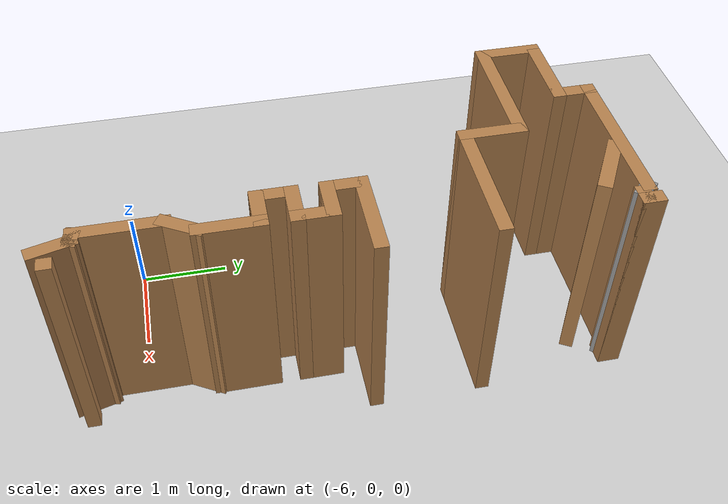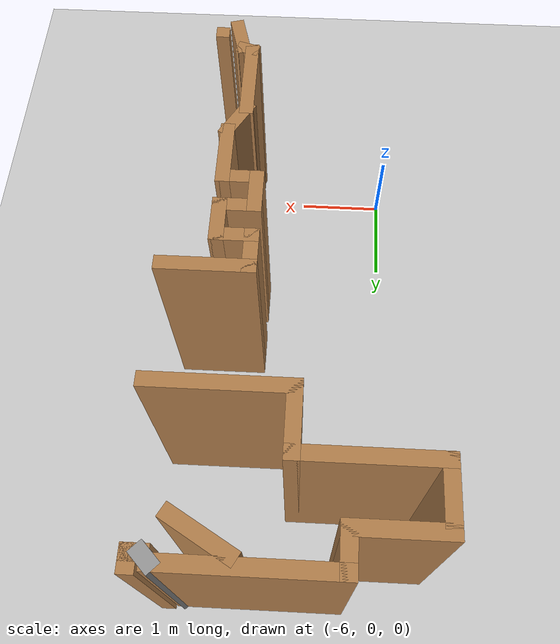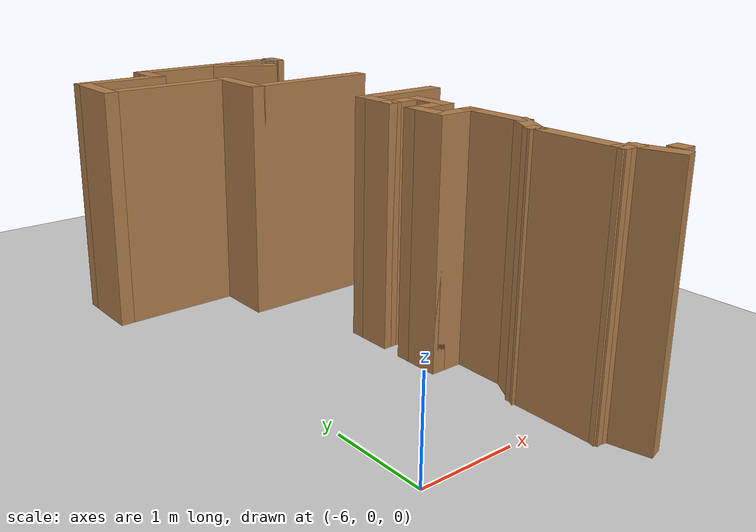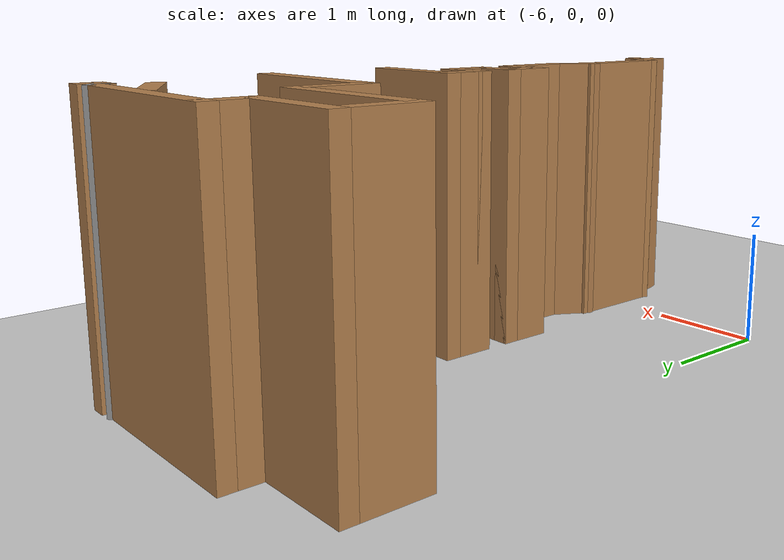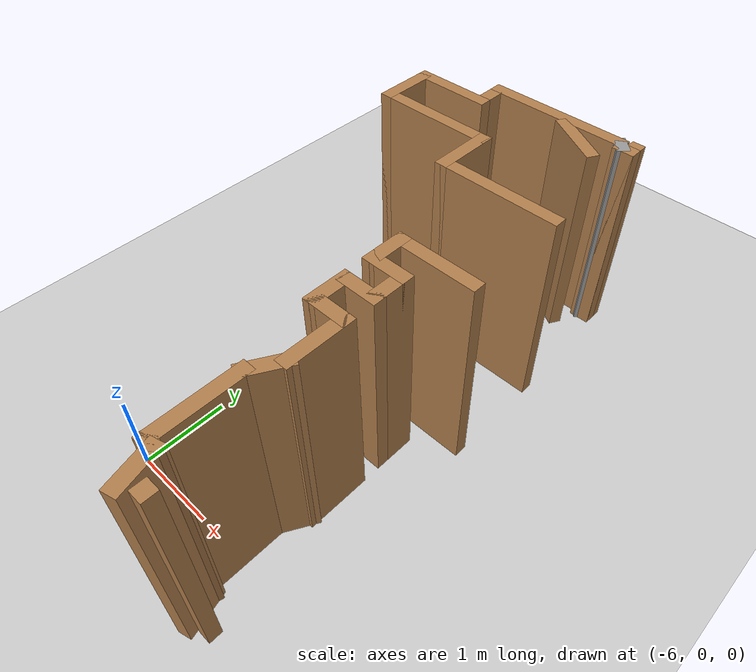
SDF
<sdf version="1.6">
 <world name="default">
  <model name="ground_plane">
   <static>1</static>
   <link name="link">
    <collision name="collision">
     <geometry><plane><normal>0 0 1</normal><size>100 100</size></plane></geometry>
     <surface><friction><ode><mu>100</mu><mu2>50</mu2></ode></friction></surface>
    </collision>
    <visual name="visual">
     <cast_shadows>0</cast_shadows>
     <geometry><plane><normal>0 0 1</normal><size>100 100</size></plane></geometry>
     <material>
      <script><uri>file://media/materials/scripts/gazebo.material</uri><name>Gazebo/Grey</name></script>
     </material>
    </visual>
   </link>
  </model>
  <model name="map_30">
   <link name="Wall_10">
    <pose>-6.15506 4.97315 0 0 0 -1.5708</pose>
    <visual name="Wall_10_Visual">
     <pose>0 0 1.25 0 -0 0</pose>
     <geometry><box><size>0.75 0.15 2.5</size></box></geometry>
     <material>
      <script><uri>file://media/materials/scripts/gazebo.material</uri><name>Gazebo/Wood</name></script>
      <ambient>1 1 1 1</ambient>
      <shader type="pixel"/>
     </material>
     <meta><layer>0</layer></meta>
    </visual>
    <collision name="Wall_10_Collision">
     <pose>0 0 1.25 0 -0 0</pose>
     <geometry><box><size>0.75 0.15 2.5</size></box></geometry>
     <surface>
      <friction>
       <ode><mu>1</mu><mu2>1</mu2><fdir1>0 0 0</fdir1><slip1>0</slip1><slip2>0</slip2></ode>
       <torsional>
        <coefficient>1</coefficient>
        <patch_radius>0</patch_radius>
        <surface_radius>0</surface_radius>
        <use_patch_radius>1</use_patch_radius>
        <ode><slip>0</slip></ode>
       </torsional>
      </friction>
      <bounce><restitution_coefficient>0</restitution_coefficient><threshold>1e+06</threshold></bounce>
      <contact>
       <collide_without_contact>0</collide_without_contact>
       <collide_without_contact_bitmask>1</collide_without_contact_bitmask>
       <collide_bitmask>1</collide_bitmask>
       <ode>
        <soft_cfm>0</soft_cfm>
        <soft_erp>0.2</soft_erp>
        <kp>1e+13</kp>
        <kd>1</kd>
        <max_vel>0.01</max_vel>
        <min_depth>0</min_depth>
       </ode>
       <bullet>
        <split_impulse>1</split_impulse>
        <split_impulse_penetration_threshold>-0.01</split_impulse_penetration_threshold>
        <soft_cfm>0</soft_cfm>
        <soft_erp>0.2</soft_erp>
        <kp>1e+13</kp>
        <kd>1</kd>
       </bullet>
      </contact>
     </surface>
    </collision>
   </link>
   <link name="Wall_13">
    <pose>-5.48006 4.67315 0 0 -0 0</pose>
    <visual name="Wall_13_Visual">
     <pose>0 0 1.25 0 -0 0</pose>
     <geometry><box><size>1.5 0.15 2.5</size></box></geometry>
     <material>
      <script><uri>file://media/materials/scripts/gazebo.material</uri><name>Gazebo/Wood</name></script>
      <ambient>1 1 1 1</ambient>
      <shader type="pixel"/>
     </material>
     <meta><layer>0</layer></meta>
    </visual>
    <collision name="Wall_13_Collision">
     <pose>0 0 1.25 0 -0 0</pose>
     <geometry><box><size>1.5 0.15 2.5</size></box></geometry>
     <surface>
      <friction>
       <ode><mu>1</mu><mu2>1</mu2><fdir1>0 0 0</fdir1><slip1>0</slip1><slip2>0</slip2></ode>
       <torsional>
        <coefficient>1</coefficient>
        <patch_radius>0</patch_radius>
        <surface_radius>0</surface_radius>
        <use_patch_radius>1</use_patch_radius>
        <ode><slip>0</slip></ode>
       </torsional>
      </friction>
      <bounce><restitution_coefficient>0</restitution_coefficient><threshold>1e+06</threshold></bounce>
      <contact>
       <collide_without_contact>0</collide_without_contact>
       <collide_without_contact_bitmask>1</collide_without_contact_bitmask>
       <collide_bitmask>1</collide_bitmask>
       <ode>
        <soft_cfm>0</soft_cfm>
        <soft_erp>0.2</soft_erp>
        <kp>1e+13</kp>
        <kd>1</kd>
        <max_vel>0.01</max_vel>
        <min_depth>0</min_depth>
       </ode>
       <bullet>
        <split_impulse>1</split_impulse>
        <split_impulse_penetration_threshold>-0.01</split_impulse_penetration_threshold>
        <soft_cfm>0</soft_cfm>
        <soft_erp>0.2</soft_erp>
        <kp>1e+13</kp>
        <kd>1</kd>
       </bullet>
      </contact>
     </surface>
    </collision>
   </link>
   <link name="Wall_14">
    <pose>-4.80506 4.37315 0 0 0 -1.5708</pose>
    <visual name="Wall_14_Visual">
     <pose>0 0 1.25 0 -0 0</pose>
     <geometry><box><size>0.75 0.15 2.5</size></box></geometry>
     <material>
      <script><uri>file://media/materials/scripts/gazebo.material</uri><name>Gazebo/Wood</name></script>
      <ambient>1 1 1 1</ambient>
      <shader type="pixel"/>
     </material>
     <meta><layer>0</layer></meta>
    </visual>
    <collision name="Wall_14_Collision">
     <pose>0 0 1.25 0 -0 0</pose>
     <geometry><box><size>0.75 0.15 2.5</size></box></geometry>
     <surface>
      <friction>
       <ode><mu>1</mu><mu2>1</mu2><fdir1>0 0 0</fdir1><slip1>0</slip1><slip2>0</slip2></ode>
       <torsional>
        <coefficient>1</coefficient>
        <patch_radius>0</patch_radius>
        <surface_radius>0</surface_radius>
        <use_patch_radius>1</use_patch_radius>
        <ode><slip>0</slip></ode>
       </torsional>
      </friction>
      <bounce><restitution_coefficient>0</restitution_coefficient><threshold>1e+06</threshold></bounce>
      <contact>
       <collide_without_contact>0</collide_without_contact>
       <collide_without_contact_bitmask>1</collide_without_contact_bitmask>
       <collide_bitmask>1</collide_bitmask>
       <ode>
        <soft_cfm>0</soft_cfm>
        <soft_erp>0.2</soft_erp>
        <kp>1e+13</kp>
        <kd>1</kd>
        <max_vel>0.01</max_vel>
        <min_depth>0</min_depth>
       </ode>
       <bullet>
        <split_impulse>1</split_impulse>
        <split_impulse_penetration_threshold>-0.01</split_impulse_penetration_threshold>
        <soft_cfm>0</soft_cfm>
        <soft_erp>0.2</soft_erp>
        <kp>1e+13</kp>
        <kd>1</kd>
       </bullet>
      </contact>
     </surface>
    </collision>
   </link>
   <link name="Wall_15">
    <pose>-4.13006 4.07315 0 0 -0 0</pose>
    <visual name="Wall_15_Visual">
     <pose>0 0 1.25 0 -0 0</pose>
     <geometry><box><size>1.5 0.15 2.5</size></box></geometry>
     <material>
      <script><uri>file://media/materials/scripts/gazebo.material</uri><name>Gazebo/Wood</name></script>
      <ambient>1 1 1 1</ambient>
      <shader type="pixel"/>
     </material>
     <meta><layer>0</layer></meta>
    </visual>
    <collision name="Wall_15_Collision">
     <pose>0 0 1.25 0 -0 0</pose>
     <geometry><box><size>1.5 0.15 2.5</size></box></geometry>
     <surface>
      <friction>
       <ode><mu>1</mu><mu2>1</mu2><fdir1>0 0 0</fdir1><slip1>0</slip1><slip2>0</slip2></ode>
       <torsional>
        <coefficient>1</coefficient>
        <patch_radius>0</patch_radius>
        <surface_radius>0</surface_radius>
        <use_patch_radius>1</use_patch_radius>
        <ode><slip>0</slip></ode>
       </torsional>
      </friction>
      <bounce><restitution_coefficient>0</restitution_coefficient><threshold>1e+06</threshold></bounce>
      <contact>
       <collide_without_contact>0</collide_without_contact>
       <collide_without_contact_bitmask>1</collide_without_contact_bitmask>
       <collide_bitmask>1</collide_bitmask>
       <ode>
        <soft_cfm>0</soft_cfm>
        <soft_erp>0.2</soft_erp>
        <kp>1e+13</kp>
        <kd>1</kd>
        <max_vel>0.01</max_vel>
        <min_depth>0</min_depth>
       </ode>
       <bullet>
        <split_impulse>1</split_impulse>
        <split_impulse_penetration_threshold>-0.01</split_impulse_penetration_threshold>
        <soft_cfm>0</soft_cfm>
        <soft_erp>0.2</soft_erp>
        <kp>1e+13</kp>
        <kd>1</kd>
       </bullet>
      </contact>
     </surface>
    </collision>
   </link>
   <link name="Wall_182">
    <pose>-4.08456 5.38678 0 0 0 -0.523599</pose>
    <visual name="Wall_182_Visual">
     <pose>0 0 1.25 0 -0 0</pose>
     <geometry><box><size>0.75 0.15 2.5</size></box></geometry>
     <material>
      <script><uri>file://media/materials/scripts/gazebo.material</uri><name>Gazebo/Wood</name></script>
      <ambient>1 1 1 1</ambient>
      <shader type="pixel"/>
     </material>
     <meta><layer>0</layer></meta>
    </visual>
    <collision name="Wall_182_Collision">
     <pose>0 0 1.25 0 -0 0</pose>
     <geometry><box><size>0.75 0.15 2.5</size></box></geometry>
     <surface>
      <friction>
       <ode><mu>1</mu><mu2>1</mu2><fdir1>0 0 0</fdir1><slip1>0</slip1><slip2>0</slip2></ode>
       <torsional>
        <coefficient>1</coefficient>
        <patch_radius>0</patch_radius>
        <surface_radius>0</surface_radius>
        <use_patch_radius>1</use_patch_radius>
        <ode><slip>0</slip></ode>
       </torsional>
      </friction>
      <bounce><restitution_coefficient>0</restitution_coefficient><threshold>1e+06</threshold></bounce>
      <contact>
       <collide_without_contact>0</collide_without_contact>
       <collide_without_contact_bitmask>1</collide_without_contact_bitmask>
       <collide_bitmask>1</collide_bitmask>
       <ode>
        <soft_cfm>0</soft_cfm>
        <soft_erp>0.2</soft_erp>
        <kp>1e+13</kp>
        <kd>1</kd>
        <max_vel>0.01</max_vel>
        <min_depth>0</min_depth>
       </ode>
       <bullet>
        <split_impulse>1</split_impulse>
        <split_impulse_penetration_threshold>-0.01</split_impulse_penetration_threshold>
        <soft_cfm>0</soft_cfm>
        <soft_erp>0.2</soft_erp>
        <kp>1e+13</kp>
        <kd>1</kd>
       </bullet>
      </contact>
     </surface>
    </collision>
   </link>
   <link name="Wall_22">
    <pose>-3.88006 2.87315 0 0 -0 3.14159</pose>
    <visual name="Wall_22_Visual">
     <pose>0 0 1.25 0 -0 0</pose>
     <geometry><box><size>1 0.15 2.5</size></box></geometry>
     <material>
      <script><uri>file://media/materials/scripts/gazebo.material</uri><name>Gazebo/Wood</name></script>
      <ambient>1 1 1 1</ambient>
      <shader type="pixel"/>
     </material>
     <meta><layer>0</layer></meta>
    </visual>
    <collision name="Wall_22_Collision">
     <pose>0 0 1.25 0 -0 0</pose>
     <geometry><box><size>1 0.15 2.5</size></box></geometry>
     <surface>
      <friction>
       <ode><mu>1</mu><mu2>1</mu2><fdir1>0 0 0</fdir1><slip1>0</slip1><slip2>0</slip2></ode>
       <torsional>
        <coefficient>1</coefficient>
        <patch_radius>0</patch_radius>
        <surface_radius>0</surface_radius>
        <use_patch_radius>1</use_patch_radius>
        <ode><slip>0</slip></ode>
       </torsional>
      </friction>
      <bounce><restitution_coefficient>0</restitution_coefficient><threshold>1e+06</threshold></bounce>
      <contact>
       <collide_without_contact>0</collide_without_contact>
       <collide_without_contact_bitmask>1</collide_without_contact_bitmask>
       <collide_bitmask>1</collide_bitmask>
       <ode>
        <soft_cfm>0</soft_cfm>
        <soft_erp>0.2</soft_erp>
        <kp>1e+13</kp>
        <kd>1</kd>
        <max_vel>0.01</max_vel>
        <min_depth>0</min_depth>
       </ode>
       <bullet>
        <split_impulse>1</split_impulse>
        <split_impulse_penetration_threshold>-0.01</split_impulse_penetration_threshold>
        <soft_cfm>0</soft_cfm>
        <soft_erp>0.2</soft_erp>
        <kp>1e+13</kp>
        <kd>1</kd>
       </bullet>
      </contact>
     </surface>
    </collision>
   </link>
   <link name="Wall_23">
    <pose>-4.30506 2.69815 0 0 0 -1.5708</pose>
    <visual name="Wall_23_Visual">
     <pose>0 0 1.25 0 -0 0</pose>
     <geometry><box><size>0.5 0.15 2.5</size></box></geometry>
     <material>
      <script><uri>file://media/materials/scripts/gazebo.material</uri><name>Gazebo/Wood</name></script>
      <ambient>1 1 1 1</ambient>
      <shader type="pixel"/>
     </material>
     <meta><layer>0</layer></meta>
    </visual>
    <collision name="Wall_23_Collision">
     <pose>0 0 1.25 0 -0 0</pose>
     <geometry><box><size>0.5 0.15 2.5</size></box></geometry>
     <surface>
      <friction>
       <ode><mu>1</mu><mu2>1</mu2><fdir1>0 0 0</fdir1><slip1>0</slip1><slip2>0</slip2></ode>
       <torsional>
        <coefficient>1</coefficient>
        <patch_radius>0</patch_radius>
        <surface_radius>0</surface_radius>
        <use_patch_radius>1</use_patch_radius>
        <ode><slip>0</slip></ode>
       </torsional>
      </friction>
      <bounce><restitution_coefficient>0</restitution_coefficient><threshold>1e+06</threshold></bounce>
      <contact>
       <collide_without_contact>0</collide_without_contact>
       <collide_without_contact_bitmask>1</collide_without_contact_bitmask>
       <collide_bitmask>1</collide_bitmask>
       <ode>
        <soft_cfm>0</soft_cfm>
        <soft_erp>0.2</soft_erp>
        <kp>1e+13</kp>
        <kd>1</kd>
        <max_vel>0.01</max_vel>
        <min_depth>0</min_depth>
       </ode>
       <bullet>
        <split_impulse>1</split_impulse>
        <split_impulse_penetration_threshold>-0.01</split_impulse_penetration_threshold>
        <soft_cfm>0</soft_cfm>
        <soft_erp>0.2</soft_erp>
        <kp>1e+13</kp>
        <kd>1</kd>
       </bullet>
      </contact>
     </surface>
    </collision>
   </link>
   <link name="Wall_24">
    <pose>-4.13006 2.52315 0 0 -0 0</pose>
    <visual name="Wall_24_Visual">
     <pose>0 0 1.25 0 -0 0</pose>
     <geometry><box><size>0.5 0.15 2.5</size></box></geometry>
     <material>
      <script><uri>file://media/materials/scripts/gazebo.material</uri><name>Gazebo/Wood</name></script>
      <ambient>1 1 1 1</ambient>
      <shader type="pixel"/>
     </material>
     <meta><layer>0</layer></meta>
    </visual>
    <collision name="Wall_24_Collision">
     <pose>0 0 1.25 0 -0 0</pose>
     <geometry><box><size>0.5 0.15 2.5</size></box></geometry>
     <surface>
      <friction>
       <ode><mu>1</mu><mu2>1</mu2><fdir1>0 0 0</fdir1><slip1>0</slip1><slip2>0</slip2></ode>
       <torsional>
        <coefficient>1</coefficient>
        <patch_radius>0</patch_radius>
        <surface_radius>0</surface_radius>
        <use_patch_radius>1</use_patch_radius>
        <ode><slip>0</slip></ode>
       </torsional>
      </friction>
      <bounce><restitution_coefficient>0</restitution_coefficient><threshold>1e+06</threshold></bounce>
      <contact>
       <collide_without_contact>0</collide_without_contact>
       <collide_without_contact_bitmask>1</collide_without_contact_bitmask>
       <collide_bitmask>1</collide_bitmask>
       <ode>
        <soft_cfm>0</soft_cfm>
        <soft_erp>0.2</soft_erp>
        <kp>1e+13</kp>
        <kd>1</kd>
        <max_vel>0.01</max_vel>
        <min_depth>0</min_depth>
       </ode>
       <bullet>
        <split_impulse>1</split_impulse>
        <split_impulse_penetration_threshold>-0.01</split_impulse_penetration_threshold>
        <soft_cfm>0</soft_cfm>
        <soft_erp>0.2</soft_erp>
        <kp>1e+13</kp>
        <kd>1</kd>
       </bullet>
      </contact>
     </surface>
    </collision>
   </link>
   <link name="Wall_25">
    <pose>-3.95506 2.34815 0 0 0 -1.5708</pose>
    <visual name="Wall_25_Visual">
     <pose>0 0 1.25 0 -0 0</pose>
     <geometry><box><size>0.5 0.15 2.5</size></box></geometry>
     <material>
      <script><uri>file://media/materials/scripts/gazebo.material</uri><name>Gazebo/Wood</name></script>
      <ambient>1 1 1 1</ambient>
      <shader type="pixel"/>
     </material>
     <meta><layer>0</layer></meta>
    </visual>
    <collision name="Wall_25_Collision">
     <pose>0 0 1.25 0 -0 0</pose>
     <geometry><box><size>0.5 0.15 2.5</size></box></geometry>
     <surface>
      <friction>
       <ode><mu>1</mu><mu2>1</mu2><fdir1>0 0 0</fdir1><slip1>0</slip1><slip2>0</slip2></ode>
       <torsional>
        <coefficient>1</coefficient>
        <patch_radius>0</patch_radius>
        <surface_radius>0</surface_radius>
        <use_patch_radius>1</use_patch_radius>
        <ode><slip>0</slip></ode>
       </torsional>
      </friction>
      <bounce><restitution_coefficient>0</restitution_coefficient><threshold>1e+06</threshold></bounce>
      <contact>
       <collide_without_contact>0</collide_without_contact>
       <collide_without_contact_bitmask>1</collide_without_contact_bitmask>
       <collide_bitmask>1</collide_bitmask>
       <ode>
        <soft_cfm>0</soft_cfm>
        <soft_erp>0.2</soft_erp>
        <kp>1e+13</kp>
        <kd>1</kd>
        <max_vel>0.01</max_vel>
        <min_depth>0</min_depth>
       </ode>
       <bullet>
        <split_impulse>1</split_impulse>
        <split_impulse_penetration_threshold>-0.01</split_impulse_penetration_threshold>
        <soft_cfm>0</soft_cfm>
        <soft_erp>0.2</soft_erp>
        <kp>1e+13</kp>
        <kd>1</kd>
       </bullet>
      </contact>
     </surface>
    </collision>
   </link>
   <link name="Wall_26">
    <pose>-4.13006 2.17315 0 0 -0 3.14159</pose>
    <visual name="Wall_26_Visual">
     <pose>0 0 1.25 0 -0 0</pose>
     <geometry><box><size>0.5 0.15 2.5</size></box></geometry>
     <material>
      <script><uri>file://media/materials/scripts/gazebo.material</uri><name>Gazebo/Wood</name></script>
      <ambient>1 1 1 1</ambient>
      <shader type="pixel"/>
     </material>
     <meta><layer>0</layer></meta>
    </visual>
    <collision name="Wall_26_Collision">
     <pose>0 0 1.25 0 -0 0</pose>
     <geometry><box><size>0.5 0.15 2.5</size></box></geometry>
     <surface>
      <friction>
       <ode><mu>1</mu><mu2>1</mu2><fdir1>0 0 0</fdir1><slip1>0</slip1><slip2>0</slip2></ode>
       <torsional>
        <coefficient>1</coefficient>
        <patch_radius>0</patch_radius>
        <surface_radius>0</surface_radius>
        <use_patch_radius>1</use_patch_radius>
        <ode><slip>0</slip></ode>
       </torsional>
      </friction>
      <bounce><restitution_coefficient>0</restitution_coefficient><threshold>1e+06</threshold></bounce>
      <contact>
       <collide_without_contact>0</collide_without_contact>
       <collide_without_contact_bitmask>1</collide_without_contact_bitmask>
       <collide_bitmask>1</collide_bitmask>
       <ode>
        <soft_cfm>0</soft_cfm>
        <soft_erp>0.2</soft_erp>
        <kp>1e+13</kp>
        <kd>1</kd>
        <max_vel>0.01</max_vel>
        <min_depth>0</min_depth>
       </ode>
       <bullet>
        <split_impulse>1</split_impulse>
        <split_impulse_penetration_threshold>-0.01</split_impulse_penetration_threshold>
        <soft_cfm>0</soft_cfm>
        <soft_erp>0.2</soft_erp>
        <kp>1e+13</kp>
        <kd>1</kd>
       </bullet>
      </contact>
     </surface>
    </collision>
   </link>
   <link name="Wall_27">
    <pose>-4.30506 1.99815 0 0 0 -1.5708</pose>
    <visual name="Wall_27_Visual">
     <pose>0 0 1.25 0 -0 0</pose>
     <geometry><box><size>0.5 0.15 2.5</size></box></geometry>
     <material>
      <script><uri>file://media/materials/scripts/gazebo.material</uri><name>Gazebo/Wood</name></script>
      <ambient>1 1 1 1</ambient>
      <shader type="pixel"/>
     </material>
     <meta><layer>0</layer></meta>
    </visual>
    <collision name="Wall_27_Collision">
     <pose>0 0 1.25 0 -0 0</pose>
     <geometry><box><size>0.5 0.15 2.5</size></box></geometry>
     <surface>
      <friction>
       <ode><mu>1</mu><mu2>1</mu2><fdir1>0 0 0</fdir1><slip1>0</slip1><slip2>0</slip2></ode>
       <torsional>
        <coefficient>1</coefficient>
        <patch_radius>0</patch_radius>
        <surface_radius>0</surface_radius>
        <use_patch_radius>1</use_patch_radius>
        <ode><slip>0</slip></ode>
       </torsional>
      </friction>
      <bounce><restitution_coefficient>0</restitution_coefficient><threshold>1e+06</threshold></bounce>
      <contact>
       <collide_without_contact>0</collide_without_contact>
       <collide_without_contact_bitmask>1</collide_without_contact_bitmask>
       <collide_bitmask>1</collide_bitmask>
       <ode>
        <soft_cfm>0</soft_cfm>
        <soft_erp>0.2</soft_erp>
        <kp>1e+13</kp>
        <kd>1</kd>
        <max_vel>0.01</max_vel>
        <min_depth>0</min_depth>
       </ode>
       <bullet>
        <split_impulse>1</split_impulse>
        <split_impulse_penetration_threshold>-0.01</split_impulse_penetration_threshold>
        <soft_cfm>0</soft_cfm>
        <soft_erp>0.2</soft_erp>
        <kp>1e+13</kp>
        <kd>1</kd>
       </bullet>
      </contact>
     </surface>
    </collision>
   </link>
   <link name="Wall_28">
    <pose>-4.13006 1.82315 0 0 -0 0</pose>
    <visual name="Wall_28_Visual">
     <pose>0 0 1.25 0 -0 0</pose>
     <geometry><box><size>0.5 0.15 2.5</size></box></geometry>
     <material>
      <script><uri>file://media/materials/scripts/gazebo.material</uri><name>Gazebo/Wood</name></script>
      <ambient>1 1 1 1</ambient>
      <shader type="pixel"/>
     </material>
     <meta><layer>0</layer></meta>
    </visual>
    <collision name="Wall_28_Collision">
     <pose>0 0 1.25 0 -0 0</pose>
     <geometry><box><size>0.5 0.15 2.5</size></box></geometry>
     <surface>
      <friction>
       <ode><mu>1</mu><mu2>1</mu2><fdir1>0 0 0</fdir1><slip1>0</slip1><slip2>0</slip2></ode>
       <torsional>
        <coefficient>1</coefficient>
        <patch_radius>0</patch_radius>
        <surface_radius>0</surface_radius>
        <use_patch_radius>1</use_patch_radius>
        <ode><slip>0</slip></ode>
       </torsional>
      </friction>
      <bounce><restitution_coefficient>0</restitution_coefficient><threshold>1e+06</threshold></bounce>
      <contact>
       <collide_without_contact>0</collide_without_contact>
       <collide_without_contact_bitmask>1</collide_without_contact_bitmask>
       <collide_bitmask>1</collide_bitmask>
       <ode>
        <soft_cfm>0</soft_cfm>
        <soft_erp>0.2</soft_erp>
        <kp>1e+13</kp>
        <kd>1</kd>
        <max_vel>0.01</max_vel>
        <min_depth>0</min_depth>
       </ode>
       <bullet>
        <split_impulse>1</split_impulse>
        <split_impulse_penetration_threshold>-0.01</split_impulse_penetration_threshold>
        <soft_cfm>0</soft_cfm>
        <soft_erp>0.2</soft_erp>
        <kp>1e+13</kp>
        <kd>1</kd>
       </bullet>
      </contact>
     </surface>
    </collision>
   </link>
   <link name="Wall_29">
    <pose>-3.95506 1.52315 0 0 0 -1.5708</pose>
    <visual name="Wall_29_Visual">
     <pose>0 0 1.25 0 -0 0</pose>
     <geometry><box><size>0.75 0.15 2.5</size></box></geometry>
     <material>
      <script><uri>file://media/materials/scripts/gazebo.material</uri><name>Gazebo/Wood</name></script>
      <ambient>1 1 1 1</ambient>
      <shader type="pixel"/>
     </material>
     <meta><layer>0</layer></meta>
    </visual>
    <collision name="Wall_29_Collision">
     <pose>0 0 1.25 0 -0 0</pose>
     <geometry><box><size>0.75 0.15 2.5</size></box></geometry>
     <surface>
      <friction>
       <ode><mu>1</mu><mu2>1</mu2><fdir1>0 0 0</fdir1><slip1>0</slip1><slip2>0</slip2></ode>
       <torsional>
        <coefficient>1</coefficient>
        <patch_radius>0</patch_radius>
        <surface_radius>0</surface_radius>
        <use_patch_radius>1</use_patch_radius>
        <ode><slip>0</slip></ode>
       </torsional>
      </friction>
      <bounce><restitution_coefficient>0</restitution_coefficient><threshold>1e+06</threshold></bounce>
      <contact>
       <collide_without_contact>0</collide_without_contact>
       <collide_without_contact_bitmask>1</collide_without_contact_bitmask>
       <collide_bitmask>1</collide_bitmask>
       <ode>
        <soft_cfm>0</soft_cfm>
        <soft_erp>0.2</soft_erp>
        <kp>1e+13</kp>
        <kd>1</kd>
        <max_vel>0.01</max_vel>
        <min_depth>0</min_depth>
       </ode>
       <bullet>
        <split_impulse>1</split_impulse>
        <split_impulse_penetration_threshold>-0.01</split_impulse_penetration_threshold>
        <soft_cfm>0</soft_cfm>
        <soft_erp>0.2</soft_erp>
        <kp>1e+13</kp>
        <kd>1</kd>
       </bullet>
      </contact>
     </surface>
    </collision>
   </link>
   <link name="Wall_30">
    <pose>-4.04256 1.07159 0 0 0 -2.0944</pose>
    <visual name="Wall_30_Visual">
     <pose>0 0 1.25 0 -0 0</pose>
     <geometry><box><size>0.5 0.15 2.5</size></box></geometry>
     <material>
      <script><uri>file://media/materials/scripts/gazebo.material</uri><name>Gazebo/Wood</name></script>
      <ambient>1 1 1 1</ambient>
      <shader type="pixel"/>
     </material>
     <meta><layer>0</layer></meta>
    </visual>
    <collision name="Wall_30_Collision">
     <pose>0 0 1.25 0 -0 0</pose>
     <geometry><box><size>0.5 0.15 2.5</size></box></geometry>
     <surface>
      <friction>
       <ode><mu>1</mu><mu2>1</mu2><fdir1>0 0 0</fdir1><slip1>0</slip1><slip2>0</slip2></ode>
       <torsional>
        <coefficient>1</coefficient>
        <patch_radius>0</patch_radius>
        <surface_radius>0</surface_radius>
        <use_patch_radius>1</use_patch_radius>
        <ode><slip>0</slip></ode>
       </torsional>
      </friction>
      <bounce><restitution_coefficient>0</restitution_coefficient><threshold>1e+06</threshold></bounce>
      <contact>
       <collide_without_contact>0</collide_without_contact>
       <collide_without_contact_bitmask>1</collide_without_contact_bitmask>
       <collide_bitmask>1</collide_bitmask>
       <ode>
        <soft_cfm>0</soft_cfm>
        <soft_erp>0.2</soft_erp>
        <kp>1e+13</kp>
        <kd>1</kd>
        <max_vel>0.01</max_vel>
        <min_depth>0</min_depth>
       </ode>
       <bullet>
        <split_impulse>1</split_impulse>
        <split_impulse_penetration_threshold>-0.01</split_impulse_penetration_threshold>
        <soft_cfm>0</soft_cfm>
        <soft_erp>0.2</soft_erp>
        <kp>1e+13</kp>
        <kd>1</kd>
       </bullet>
      </contact>
     </surface>
    </collision>
   </link>
   <link name="Wall_33">
    <pose>-3.78006 -0.179962 0 0 -0 0</pose>
    <visual name="Wall_33_Visual">
     <pose>0 0 1.25 0 -0 0</pose>
     <geometry><box><size>0.15 0.15 2.5</size></box></geometry>
     <material>
      <script><uri>file://media/materials/scripts/gazebo.material</uri><name>Gazebo/Wood</name></script>
      <ambient>1 1 1 1</ambient>
      <shader type="pixel"/>
     </material>
     <meta><layer>0</layer></meta>
    </visual>
    <collision name="Wall_33_Collision">
     <pose>0 0 1.25 0 -0 0</pose>
     <geometry><box><size>0.15 0.15 2.5</size></box></geometry>
     <surface>
      <friction>
       <ode><mu>1</mu><mu2>1</mu2><fdir1>0 0 0</fdir1><slip1>0</slip1><slip2>0</slip2></ode>
       <torsional>
        <coefficient>1</coefficient>
        <patch_radius>0</patch_radius>
        <surface_radius>0</surface_radius>
        <use_patch_radius>1</use_patch_radius>
        <ode><slip>0</slip></ode>
       </torsional>
      </friction>
      <bounce><restitution_coefficient>0</restitution_coefficient><threshold>1e+06</threshold></bounce>
      <contact>
       <collide_without_contact>0</collide_without_contact>
       <collide_without_contact_bitmask>1</collide_without_contact_bitmask>
       <collide_bitmask>1</collide_bitmask>
       <ode>
        <soft_cfm>0</soft_cfm>
        <soft_erp>0.2</soft_erp>
        <kp>1e+13</kp>
        <kd>1</kd>
        <max_vel>0.01</max_vel>
        <min_depth>0</min_depth>
       </ode>
       <bullet>
        <split_impulse>1</split_impulse>
        <split_impulse_penetration_threshold>-0.01</split_impulse_penetration_threshold>
        <soft_cfm>0</soft_cfm>
        <soft_erp>0.2</soft_erp>
        <kp>1e+13</kp>
        <kd>1</kd>
       </bullet>
      </contact>
     </surface>
    </collision>
   </link>
   <link name="Wall_35">
    <pose>-4.13006 0.495038 0 0 0 -1.5708</pose>
    <visual name="Wall_35_Visual">
     <pose>0 0 1.25 0 -0 0</pose>
     <geometry><box><size>1 0.15 2.5</size></box></geometry>
     <material>
      <script><uri>file://media/materials/scripts/gazebo.material</uri><name>Gazebo/Wood</name></script>
      <ambient>1 1 1 1</ambient>
      <shader type="pixel"/>
     </material>
     <meta><layer>0</layer></meta>
    </visual>
    <collision name="Wall_35_Collision">
     <pose>0 0 1.25 0 -0 0</pose>
     <geometry><box><size>1 0.15 2.5</size></box></geometry>
     <surface>
      <friction>
       <ode><mu>1</mu><mu2>1</mu2><fdir1>0 0 0</fdir1><slip1>0</slip1><slip2>0</slip2></ode>
       <torsional>
        <coefficient>1</coefficient>
        <patch_radius>0</patch_radius>
        <surface_radius>0</surface_radius>
        <use_patch_radius>1</use_patch_radius>
        <ode><slip>0</slip></ode>
       </torsional>
      </friction>
      <bounce><restitution_coefficient>0</restitution_coefficient><threshold>1e+06</threshold></bounce>
      <contact>
       <collide_without_contact>0</collide_without_contact>
       <collide_without_contact_bitmask>1</collide_without_contact_bitmask>
       <collide_bitmask>1</collide_bitmask>
       <ode>
        <soft_cfm>0</soft_cfm>
        <soft_erp>0.2</soft_erp>
        <kp>1e+13</kp>
        <kd>1</kd>
        <max_vel>0.01</max_vel>
        <min_depth>0</min_depth>
       </ode>
       <bullet>
        <split_impulse>1</split_impulse>
        <split_impulse_penetration_threshold>-0.01</split_impulse_penetration_threshold>
        <soft_cfm>0</soft_cfm>
        <soft_erp>0.2</soft_erp>
        <kp>1e+13</kp>
        <kd>1</kd>
       </bullet>
      </contact>
     </surface>
    </collision>
   </link>
   <link name="Wall_36">
    <pose>-4.08176 0.057097 0 0 0 -0.261799</pose>
    <visual name="Wall_36_Visual">
     <pose>0 0 1.25 0 -0 0</pose>
     <geometry><box><size>0.25 0.15 2.5</size></box></geometry>
     <material>
      <script><uri>file://media/materials/scripts/gazebo.material</uri><name>Gazebo/Wood</name></script>
      <ambient>1 1 1 1</ambient>
      <shader type="pixel"/>
     </material>
     <meta><layer>0</layer></meta>
    </visual>
    <collision name="Wall_36_Collision">
     <pose>0 0 1.25 0 -0 0</pose>
     <geometry><box><size>0.25 0.15 2.5</size></box></geometry>
     <surface>
      <friction>
       <ode><mu>1</mu><mu2>1</mu2><fdir1>0 0 0</fdir1><slip1>0</slip1><slip2>0</slip2></ode>
       <torsional>
        <coefficient>1</coefficient>
        <patch_radius>0</patch_radius>
        <surface_radius>0</surface_radius>
        <use_patch_radius>1</use_patch_radius>
        <ode><slip>0</slip></ode>
       </torsional>
      </friction>
      <bounce><restitution_coefficient>0</restitution_coefficient><threshold>1e+06</threshold></bounce>
      <contact>
       <collide_without_contact>0</collide_without_contact>
       <collide_without_contact_bitmask>1</collide_without_contact_bitmask>
       <collide_bitmask>1</collide_bitmask>
       <ode>
        <soft_cfm>0</soft_cfm>
        <soft_erp>0.2</soft_erp>
        <kp>1e+13</kp>
        <kd>1</kd>
        <max_vel>0.01</max_vel>
        <min_depth>0</min_depth>
       </ode>
       <bullet>
        <split_impulse>1</split_impulse>
        <split_impulse_penetration_threshold>-0.01</split_impulse_penetration_threshold>
        <soft_cfm>0</soft_cfm>
        <soft_erp>0.2</soft_erp>
        <kp>1e+13</kp>
        <kd>1</kd>
       </bullet>
      </contact>
     </surface>
    </collision>
   </link>
   <link name="Wall_37">
    <pose>-3.98817 -0.124881 0 0 0 -1.309</pose>
    <visual name="Wall_37_Visual">
     <pose>0 0 1.25 0 -0 0</pose>
     <geometry><box><size>0.5 0.15 2.5</size></box></geometry>
     <material>
      <script><uri>file://media/materials/scripts/gazebo.material</uri><name>Gazebo/Wood</name></script>
      <ambient>1 1 1 1</ambient>
      <shader type="pixel"/>
     </material>
     <meta><layer>0</layer></meta>
    </visual>
    <collision name="Wall_37_Collision">
     <pose>0 0 1.25 0 -0 0</pose>
     <geometry><box><size>0.5 0.15 2.5</size></box></geometry>
     <surface>
      <friction>
       <ode><mu>1</mu><mu2>1</mu2><fdir1>0 0 0</fdir1><slip1>0</slip1><slip2>0</slip2></ode>
       <torsional>
        <coefficient>1</coefficient>
        <patch_radius>0</patch_radius>
        <surface_radius>0</surface_radius>
        <use_patch_radius>1</use_patch_radius>
        <ode><slip>0</slip></ode>
       </torsional>
      </friction>
      <bounce><restitution_coefficient>0</restitution_coefficient><threshold>1e+06</threshold></bounce>
      <contact>
       <collide_without_contact>0</collide_without_contact>
       <collide_without_contact_bitmask>1</collide_without_contact_bitmask>
       <collide_bitmask>1</collide_bitmask>
       <ode>
        <soft_cfm>0</soft_cfm>
        <soft_erp>0.2</soft_erp>
        <kp>1e+13</kp>
        <kd>1</kd>
        <max_vel>0.01</max_vel>
        <min_depth>0</min_depth>
       </ode>
       <bullet>
        <split_impulse>1</split_impulse>
        <split_impulse_penetration_threshold>-0.01</split_impulse_penetration_threshold>
        <soft_cfm>0</soft_cfm>
        <soft_erp>0.2</soft_erp>
        <kp>1e+13</kp>
        <kd>1</kd>
       </bullet>
      </contact>
     </surface>
    </collision>
   </link>
   <link name="Wall_4">
    <pose>-3.53435 5.60244 0 0 0 -1.5708</pose>
    <visual name="Wall_4_Visual">
     <pose>0 0 1.25 0 -0 0</pose>
     <geometry><box><size>0.25 0.15 2.5</size></box></geometry>
     <material>
      <script><uri>file://media/materials/scripts/gazebo.material</uri><name>Gazebo/Wood</name></script>
      <ambient>1 1 1 1</ambient>
      <shader type="pixel"/>
     </material>
     <meta><layer>0</layer></meta>
    </visual>
    <collision name="Wall_4_Collision">
     <pose>0 0 1.25 0 -0 0</pose>
     <geometry><box><size>0.25 0.15 2.5</size></box></geometry>
     <surface>
      <friction>
       <ode><mu>1</mu><mu2>1</mu2><fdir1>0 0 0</fdir1><slip1>0</slip1><slip2>0</slip2></ode>
       <torsional>
        <coefficient>1</coefficient>
        <patch_radius>0</patch_radius>
        <surface_radius>0</surface_radius>
        <use_patch_radius>1</use_patch_radius>
        <ode><slip>0</slip></ode>
       </torsional>
      </friction>
      <bounce><restitution_coefficient>0</restitution_coefficient><threshold>1e+06</threshold></bounce>
      <contact>
       <collide_without_contact>0</collide_without_contact>
       <collide_without_contact_bitmask>1</collide_without_contact_bitmask>
       <collide_bitmask>1</collide_bitmask>
       <ode>
        <soft_cfm>0</soft_cfm>
        <soft_erp>0.2</soft_erp>
        <kp>1e+13</kp>
        <kd>1</kd>
        <max_vel>0.01</max_vel>
        <min_depth>0</min_depth>
       </ode>
       <bullet>
        <split_impulse>1</split_impulse>
        <split_impulse_penetration_threshold>-0.01</split_impulse_penetration_threshold>
        <soft_cfm>0</soft_cfm>
        <soft_erp>0.2</soft_erp>
        <kp>1e+13</kp>
        <kd>1</kd>
       </bullet>
      </contact>
     </surface>
    </collision>
   </link>
   <link name="Wall_5">
    <pose>-3.58435 5.55244 0 0 -0 3.14159</pose>
    <visual name="Wall_5_Visual">
     <pose>0 0 1.25 0 -0 0</pose>
     <geometry><box><size>0.25 0.15 2.5</size></box></geometry>
     <material>
      <script><uri>file://media/materials/scripts/gazebo.material</uri><name>Gazebo/Wood</name></script>
      <ambient>1 1 1 1</ambient>
      <shader type="pixel"/>
     </material>
     <meta><layer>0</layer></meta>
    </visual>
    <collision name="Wall_5_Collision">
     <pose>0 0 1.25 0 -0 0</pose>
     <geometry><box><size>0.25 0.15 2.5</size></box></geometry>
     <surface>
      <friction>
       <ode><mu>1</mu><mu2>1</mu2><fdir1>0 0 0</fdir1><slip1>0</slip1><slip2>0</slip2></ode>
       <torsional>
        <coefficient>1</coefficient>
        <patch_radius>0</patch_radius>
        <surface_radius>0</surface_radius>
        <use_patch_radius>1</use_patch_radius>
        <ode><slip>0</slip></ode>
       </torsional>
      </friction>
      <bounce><restitution_coefficient>0</restitution_coefficient><threshold>1e+06</threshold></bounce>
      <contact>
       <collide_without_contact>0</collide_without_contact>
       <collide_without_contact_bitmask>1</collide_without_contact_bitmask>
       <collide_bitmask>1</collide_bitmask>
       <ode>
        <soft_cfm>0</soft_cfm>
        <soft_erp>0.2</soft_erp>
        <kp>1e+13</kp>
        <kd>1</kd>
        <max_vel>0.01</max_vel>
        <min_depth>0</min_depth>
       </ode>
       <bullet>
        <split_impulse>1</split_impulse>
        <split_impulse_penetration_threshold>-0.01</split_impulse_penetration_threshold>
        <soft_cfm>0</soft_cfm>
        <soft_erp>0.2</soft_erp>
        <kp>1e+13</kp>
        <kd>1</kd>
       </bullet>
      </contact>
     </surface>
    </collision>
   </link>
   <link name="Wall_6">
    <pose>-3.6697 5.58779 0 0 -0 2.35619</pose>
    <visual name="Wall_6_Visual">
     <pose>0 0 1.25 0 -0 0</pose>
     <geometry><box><size>0.25 0.15 2.5</size></box></geometry>
     <material>
      <script><uri>file://media/materials/scripts/gazebo.material</uri><name>Gazebo/Grey</name></script>
      <ambient>1 1 1 1</ambient>
      <shader type="pixel"/>
     </material>
     <meta><layer>0</layer></meta>
    </visual>
    <collision name="Wall_6_Collision">
     <pose>0 0 1.25 0 -0 0</pose>
     <geometry><box><size>0.25 0.15 2.5</size></box></geometry>
     <surface>
      <friction>
       <ode><mu>1</mu><mu2>1</mu2><fdir1>0 0 0</fdir1><slip1>0</slip1><slip2>0</slip2></ode>
       <torsional>
        <coefficient>1</coefficient>
        <patch_radius>0</patch_radius>
        <surface_radius>0</surface_radius>
        <use_patch_radius>1</use_patch_radius>
        <ode><slip>0</slip></ode>
       </torsional>
      </friction>
      <bounce><restitution_coefficient>0</restitution_coefficient><threshold>1e+06</threshold></bounce>
      <contact>
       <collide_without_contact>0</collide_without_contact>
       <collide_without_contact_bitmask>1</collide_without_contact_bitmask>
       <collide_bitmask>1</collide_bitmask>
       <ode>
        <soft_cfm>0</soft_cfm>
        <soft_erp>0.2</soft_erp>
        <kp>1e+13</kp>
        <kd>1</kd>
        <max_vel>0.01</max_vel>
        <min_depth>0</min_depth>
       </ode>
       <bullet>
        <split_impulse>1</split_impulse>
        <split_impulse_penetration_threshold>-0.01</split_impulse_penetration_threshold>
        <soft_cfm>0</soft_cfm>
        <soft_erp>0.2</soft_erp>
        <kp>1e+13</kp>
        <kd>1</kd>
       </bullet>
      </contact>
     </surface>
    </collision>
   </link>
   <link name="Wall_7">
    <pose>-4.50506 5.62315 0 0 -0 3.14159</pose>
    <visual name="Wall_7_Visual">
     <pose>0 0 1.25 0 -0 0</pose>
     <geometry><box><size>1.75 0.15 2.5</size></box></geometry>
     <material>
      <script><uri>file://media/materials/scripts/gazebo.material</uri><name>Gazebo/Wood</name></script>
      <ambient>1 1 1 1</ambient>
      <shader type="pixel"/>
     </material>
     <meta><layer>0</layer></meta>
    </visual>
    <collision name="Wall_7_Collision">
     <pose>0 0 1.25 0 -0 0</pose>
     <geometry><box><size>1.75 0.15 2.5</size></box></geometry>
     <surface>
      <friction>
       <ode><mu>1</mu><mu2>1</mu2><fdir1>0 0 0</fdir1><slip1>0</slip1><slip2>0</slip2></ode>
       <torsional>
        <coefficient>1</coefficient>
        <patch_radius>0</patch_radius>
        <surface_radius>0</surface_radius>
        <use_patch_radius>1</use_patch_radius>
        <ode><slip>0</slip></ode>
       </torsional>
      </friction>
      <bounce><restitution_coefficient>0</restitution_coefficient><threshold>1e+06</threshold></bounce>
      <contact>
       <collide_without_contact>0</collide_without_contact>
       <collide_without_contact_bitmask>1</collide_without_contact_bitmask>
       <collide_bitmask>1</collide_bitmask>
       <ode>
        <soft_cfm>0</soft_cfm>
        <soft_erp>0.2</soft_erp>
        <kp>1e+13</kp>
        <kd>1</kd>
        <max_vel>0.01</max_vel>
        <min_depth>0</min_depth>
       </ode>
       <bullet>
        <split_impulse>1</split_impulse>
        <split_impulse_penetration_threshold>-0.01</split_impulse_penetration_threshold>
        <soft_cfm>0</soft_cfm>
        <soft_erp>0.2</soft_erp>
        <kp>1e+13</kp>
        <kd>1</kd>
       </bullet>
      </contact>
     </surface>
    </collision>
   </link>
   <link name="Wall_8">
    <pose>-5.30506 5.44815 0 0 0 -1.5708</pose>
    <visual name="Wall_8_Visual">
     <pose>0 0 1.25 0 -0 0</pose>
     <geometry><box><size>0.5 0.15 2.5</size></box></geometry>
     <material>
      <script><uri>file://media/materials/scripts/gazebo.material</uri><name>Gazebo/Wood</name></script>
      <ambient>1 1 1 1</ambient>
      <shader type="pixel"/>
     </material>
     <meta><layer>0</layer></meta>
    </visual>
    <collision name="Wall_8_Collision">
     <pose>0 0 1.25 0 -0 0</pose>
     <geometry><box><size>0.5 0.15 2.5</size></box></geometry>
     <surface>
      <friction>
       <ode><mu>1</mu><mu2>1</mu2><fdir1>0 0 0</fdir1><slip1>0</slip1><slip2>0</slip2></ode>
       <torsional>
        <coefficient>1</coefficient>
        <patch_radius>0</patch_radius>
        <surface_radius>0</surface_radius>
        <use_patch_radius>1</use_patch_radius>
        <ode><slip>0</slip></ode>
       </torsional>
      </friction>
      <bounce><restitution_coefficient>0</restitution_coefficient><threshold>1e+06</threshold></bounce>
      <contact>
       <collide_without_contact>0</collide_without_contact>
       <collide_without_contact_bitmask>1</collide_without_contact_bitmask>
       <collide_bitmask>1</collide_bitmask>
       <ode>
        <soft_cfm>0</soft_cfm>
        <soft_erp>0.2</soft_erp>
        <kp>1e+13</kp>
        <kd>1</kd>
        <max_vel>0.01</max_vel>
        <min_depth>0</min_depth>
       </ode>
       <bullet>
        <split_impulse>1</split_impulse>
        <split_impulse_penetration_threshold>-0.01</split_impulse_penetration_threshold>
        <soft_cfm>0</soft_cfm>
        <soft_erp>0.2</soft_erp>
        <kp>1e+13</kp>
        <kd>1</kd>
       </bullet>
      </contact>
     </surface>
    </collision>
   </link>
   <link name="Wall_9">
    <pose>-5.73006 5.27315 0 0 -0 3.14159</pose>
    <visual name="Wall_9_Visual">
     <pose>0 0 1.25 0 -0 0</pose>
     <geometry><box><size>1 0.15 2.5</size></box></geometry>
     <material>
      <script><uri>file://media/materials/scripts/gazebo.material</uri><name>Gazebo/Wood</name></script>
      <ambient>1 1 1 1</ambient>
      <shader type="pixel"/>
     </material>
     <meta><layer>0</layer></meta>
    </visual>
    <collision name="Wall_9_Collision">
     <pose>0 0 1.25 0 -0 0</pose>
     <geometry><box><size>1 0.15 2.5</size></box></geometry>
     <surface>
      <friction>
       <ode><mu>1</mu><mu2>1</mu2><fdir1>0 0 0</fdir1><slip1>0</slip1><slip2>0</slip2></ode>
       <torsional>
        <coefficient>1</coefficient>
        <patch_radius>0</patch_radius>
        <surface_radius>0</surface_radius>
        <use_patch_radius>1</use_patch_radius>
        <ode><slip>0</slip></ode>
       </torsional>
      </friction>
      <bounce><restitution_coefficient>0</restitution_coefficient><threshold>1e+06</threshold></bounce>
      <contact>
       <collide_without_contact>0</collide_without_contact>
       <collide_without_contact_bitmask>1</collide_without_contact_bitmask>
       <collide_bitmask>1</collide_bitmask>
       <ode>
        <soft_cfm>0</soft_cfm>
        <soft_erp>0.2</soft_erp>
        <kp>1e+13</kp>
        <kd>1</kd>
        <max_vel>0.01</max_vel>
        <min_depth>0</min_depth>
       </ode>
       <bullet>
        <split_impulse>1</split_impulse>
        <split_impulse_penetration_threshold>-0.01</split_impulse_penetration_threshold>
        <soft_cfm>0</soft_cfm>
        <soft_erp>0.2</soft_erp>
        <kp>1e+13</kp>
        <kd>1</kd>
       </bullet>
      </contact>
     </surface>
    </collision>
   </link>
   <static>1</static>
   <pose>-0.242413 -0.443035 0 0 -0 0</pose>
  </model>
 </world>
</sdf>
